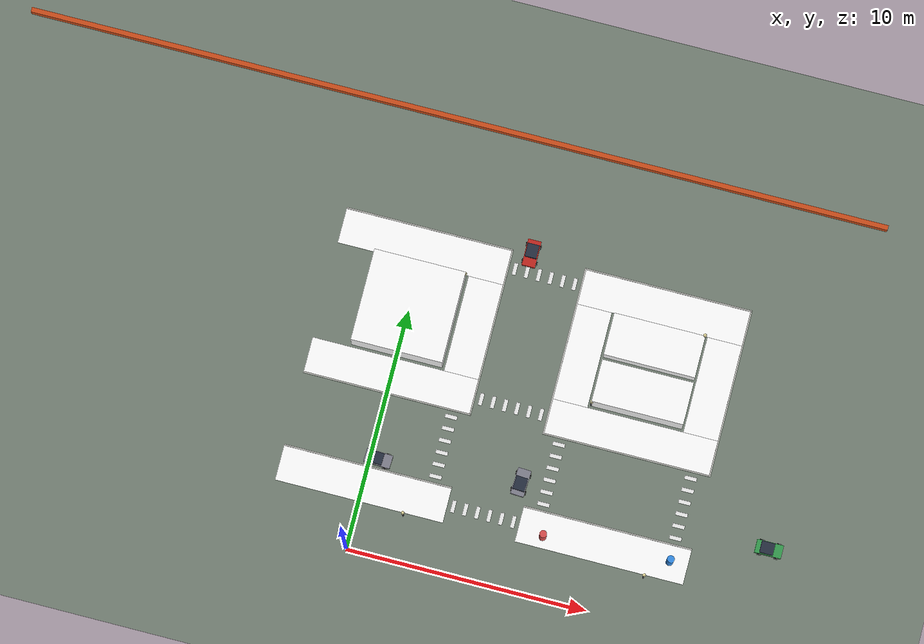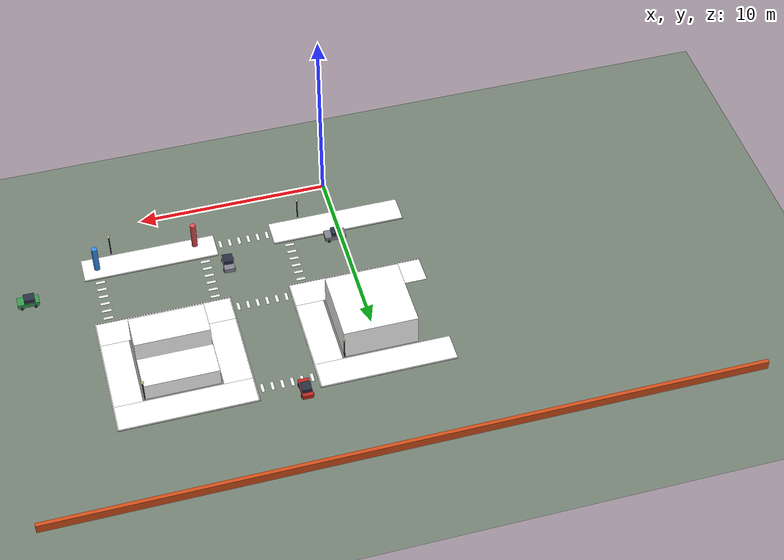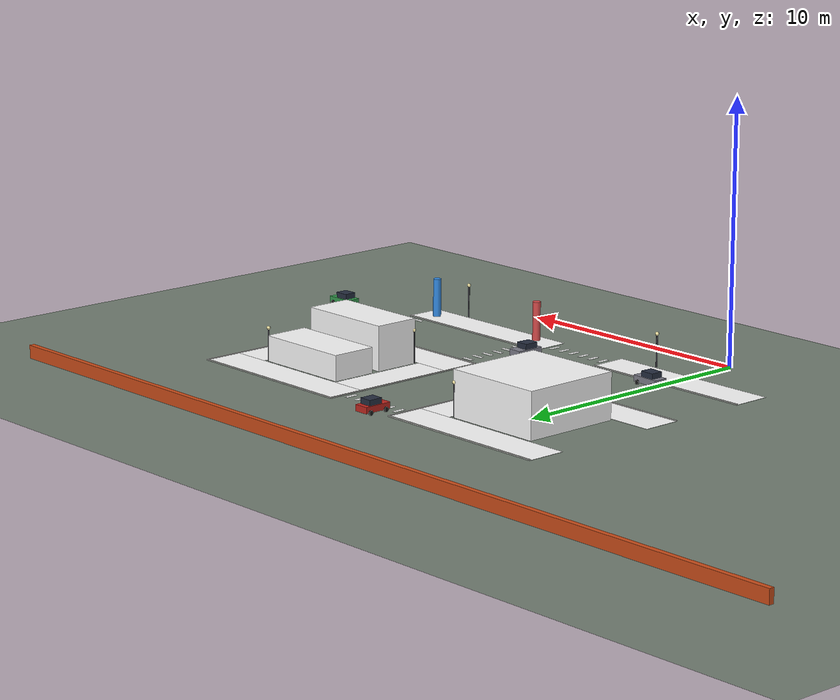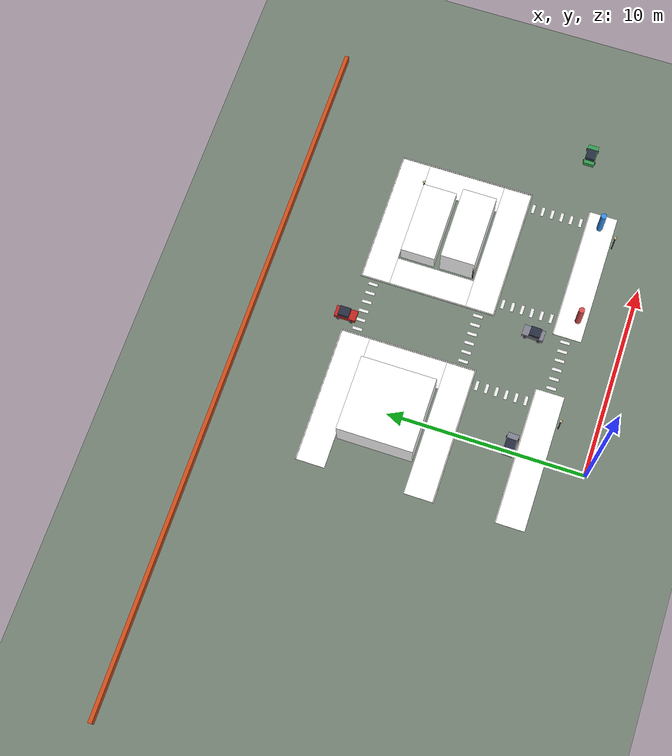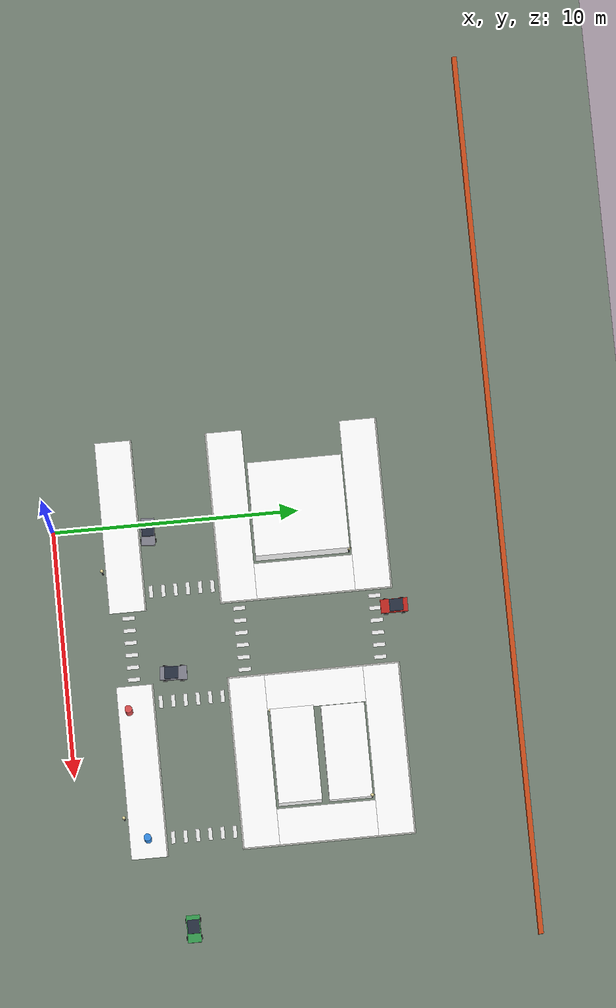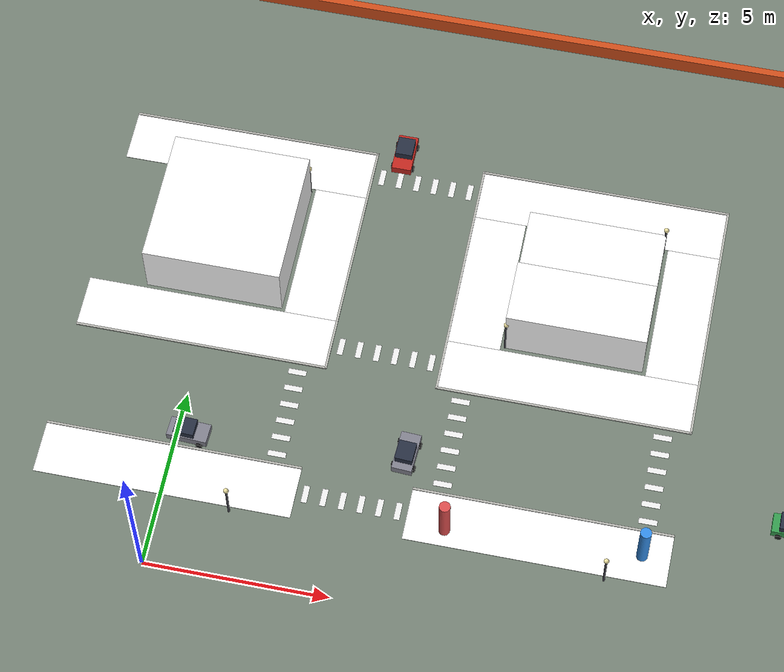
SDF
<sdf version="1.9">
 <world name="limo_city_blocks">
  <model name="ground_plane">
   <static>true</static>
   <link name="link">
    <collision name="collision">
     <geometry><plane><normal>0 0 1</normal><size>53 53</size></plane></geometry>
     <surface><friction><ode><mu>0.8</mu><mu2>0.8</mu2></ode></friction></surface>
    </collision>
    <visual name="visual">
     <geometry><plane><normal>0 0 1</normal><size>53 53</size></plane></geometry>
     <material><ambient>0.45 0.5 0.45 1</ambient><diffuse>0.45 0.5 0.45 1</diffuse></material>
    </visual>
   </link>
  </model>
  <model name="walk_n_1_1">
   <static>true</static>
   <pose>0.000 2.750 0.008 0 0 0.000</pose>
   <link name="link">
    <visual name="visual">
     <geometry><box><size>7.000 1.500 0.012</size></box></geometry>
     <material>
      <ambient>1 1 1 1</ambient>
      <diffuse>1 1 1 1</diffuse>
      <pbr>
       <metal>
        <albedo_map>model://city_textures/paving.png</albedo_map>
        <roughness>0.85</roughness>
        <metalness>0.0</metalness>
       </metal>
      </pbr>
     </material>
    </visual>
   </link>
  </model>
  <model name="walk_s_1_2">
   <static>true</static>
   <pose>0.000 7.250 0.008 0 0 0.000</pose>
   <link name="link">
    <visual name="visual">
     <geometry><box><size>7.000 1.500 0.012</size></box></geometry>
     <material>
      <ambient>1 1 1 1</ambient>
      <diffuse>1 1 1 1</diffuse>
      <pbr>
       <metal>
        <albedo_map>model://city_textures/paving.png</albedo_map>
        <roughness>0.85</roughness>
        <metalness>0.0</metalness>
       </metal>
      </pbr>
     </material>
    </visual>
   </link>
  </model>
  <model name="walk_n_1_2">
   <static>true</static>
   <pose>0.000 12.750 0.008 0 0 0.000</pose>
   <link name="link">
    <visual name="visual">
     <geometry><box><size>7.000 1.500 0.012</size></box></geometry>
     <material>
      <ambient>1 1 1 1</ambient>
      <diffuse>1 1 1 1</diffuse>
      <pbr>
       <metal>
        <albedo_map>model://city_textures/paving.png</albedo_map>
        <roughness>0.85</roughness>
        <metalness>0.0</metalness>
       </metal>
      </pbr>
     </material>
    </visual>
   </link>
  </model>
  <model name="walk_e_1_2">
   <static>true</static>
   <pose>2.750 10.000 0.008 0 0 0.000</pose>
   <link name="link">
    <visual name="visual">
     <geometry><box><size>1.500 4.000 0.012</size></box></geometry>
     <material>
      <ambient>1 1 1 1</ambient>
      <diffuse>1 1 1 1</diffuse>
      <pbr>
       <metal>
        <albedo_map>model://city_textures/paving.png</albedo_map>
        <roughness>0.85</roughness>
        <metalness>0.0</metalness>
       </metal>
      </pbr>
     </material>
    </visual>
   </link>
  </model>
  <model name="walk_n_2_1">
   <static>true</static>
   <pose>10.000 2.750 0.008 0 0 0.000</pose>
   <link name="link">
    <visual name="visual">
     <geometry><box><size>7.000 1.500 0.012</size></box></geometry>
     <material>
      <ambient>1 1 1 1</ambient>
      <diffuse>1 1 1 1</diffuse>
      <pbr>
       <metal>
        <albedo_map>model://city_textures/paving.png</albedo_map>
        <roughness>0.85</roughness>
        <metalness>0.0</metalness>
       </metal>
      </pbr>
     </material>
    </visual>
   </link>
  </model>
  <model name="walk_s_2_2">
   <static>true</static>
   <pose>10.000 7.250 0.008 0 0 0.000</pose>
   <link name="link">
    <visual name="visual">
     <geometry><box><size>7.000 1.500 0.012</size></box></geometry>
     <material>
      <ambient>1 1 1 1</ambient>
      <diffuse>1 1 1 1</diffuse>
      <pbr>
       <metal>
        <albedo_map>model://city_textures/paving.png</albedo_map>
        <roughness>0.85</roughness>
        <metalness>0.0</metalness>
       </metal>
      </pbr>
     </material>
    </visual>
   </link>
  </model>
  <model name="walk_n_2_2">
   <static>true</static>
   <pose>10.000 12.750 0.008 0 0 0.000</pose>
   <link name="link">
    <visual name="visual">
     <geometry><box><size>7.000 1.500 0.012</size></box></geometry>
     <material>
      <ambient>1 1 1 1</ambient>
      <diffuse>1 1 1 1</diffuse>
      <pbr>
       <metal>
        <albedo_map>model://city_textures/paving.png</albedo_map>
        <roughness>0.85</roughness>
        <metalness>0.0</metalness>
       </metal>
      </pbr>
     </material>
    </visual>
   </link>
  </model>
  <model name="walk_w_2_2">
   <static>true</static>
   <pose>7.250 10.000 0.008 0 0 0.000</pose>
   <link name="link">
    <visual name="visual">
     <geometry><box><size>1.500 4.000 0.012</size></box></geometry>
     <material>
      <ambient>1 1 1 1</ambient>
      <diffuse>1 1 1 1</diffuse>
      <pbr>
       <metal>
        <albedo_map>model://city_textures/paving.png</albedo_map>
        <roughness>0.85</roughness>
        <metalness>0.0</metalness>
       </metal>
      </pbr>
     </material>
    </visual>
   </link>
  </model>
  <model name="walk_e_2_2">
   <static>true</static>
   <pose>12.750 10.000 0.008 0 0 0.000</pose>
   <link name="link">
    <visual name="visual">
     <geometry><box><size>1.500 4.000 0.012</size></box></geometry>
     <material>
      <ambient>1 1 1 1</ambient>
      <diffuse>1 1 1 1</diffuse>
      <pbr>
       <metal>
        <albedo_map>model://city_textures/paving.png</albedo_map>
        <roughness>0.85</roughness>
        <metalness>0.0</metalness>
       </metal>
      </pbr>
     </material>
    </visual>
   </link>
  </model>
  <model name="curb_n_1_1">
   <static>true</static>
   <pose>0.000 3.470 0.020 0 0 0.000</pose>
   <link name="link">
    <visual name="visual">
     <geometry><box><size>7.000 0.060 0.040</size></box></geometry>
     <material><ambient>0.72 0.72 0.7 1</ambient><diffuse>0.72 0.72 0.7 1</diffuse></material>
    </visual>
   </link>
  </model>
  <model name="curb_s_1_2">
   <static>true</static>
   <pose>0.000 6.530 0.020 0 0 0.000</pose>
   <link name="link">
    <visual name="visual">
     <geometry><box><size>7.000 0.060 0.040</size></box></geometry>
     <material><ambient>0.72 0.72 0.7 1</ambient><diffuse>0.72 0.72 0.7 1</diffuse></material>
    </visual>
   </link>
  </model>
  <model name="curb_n_1_2">
   <static>true</static>
   <pose>0.000 13.470 0.020 0 0 0.000</pose>
   <link name="link">
    <visual name="visual">
     <geometry><box><size>7.000 0.060 0.040</size></box></geometry>
     <material><ambient>0.72 0.72 0.7 1</ambient><diffuse>0.72 0.72 0.7 1</diffuse></material>
    </visual>
   </link>
  </model>
  <model name="curb_e_1_2">
   <static>true</static>
   <pose>3.470 10.000 0.020 0 0 0.000</pose>
   <link name="link">
    <visual name="visual">
     <geometry><box><size>0.060 7.000 0.040</size></box></geometry>
     <material><ambient>0.72 0.72 0.7 1</ambient><diffuse>0.72 0.72 0.7 1</diffuse></material>
    </visual>
   </link>
  </model>
  <model name="curb_n_2_1">
   <static>true</static>
   <pose>10.000 3.470 0.020 0 0 0.000</pose>
   <link name="link">
    <visual name="visual">
     <geometry><box><size>7.000 0.060 0.040</size></box></geometry>
     <material><ambient>0.72 0.72 0.7 1</ambient><diffuse>0.72 0.72 0.7 1</diffuse></material>
    </visual>
   </link>
  </model>
  <model name="curb_s_2_2">
   <static>true</static>
   <pose>10.000 6.530 0.020 0 0 0.000</pose>
   <link name="link">
    <visual name="visual">
     <geometry><box><size>7.000 0.060 0.040</size></box></geometry>
     <material><ambient>0.72 0.72 0.7 1</ambient><diffuse>0.72 0.72 0.7 1</diffuse></material>
    </visual>
   </link>
  </model>
  <model name="curb_n_2_2">
   <static>true</static>
   <pose>10.000 13.470 0.020 0 0 0.000</pose>
   <link name="link">
    <visual name="visual">
     <geometry><box><size>7.000 0.060 0.040</size></box></geometry>
     <material><ambient>0.72 0.72 0.7 1</ambient><diffuse>0.72 0.72 0.7 1</diffuse></material>
    </visual>
   </link>
  </model>
  <model name="curb_w_2_2">
   <static>true</static>
   <pose>6.530 10.000 0.020 0 0 0.000</pose>
   <link name="link">
    <visual name="visual">
     <geometry><box><size>0.060 7.000 0.040</size></box></geometry>
     <material><ambient>0.72 0.72 0.7 1</ambient><diffuse>0.72 0.72 0.7 1</diffuse></material>
    </visual>
   </link>
  </model>
  <model name="curb_e_2_2">
   <static>true</static>
   <pose>13.470 10.000 0.020 0 0 0.000</pose>
   <link name="link">
    <visual name="visual">
     <geometry><box><size>0.060 7.000 0.040</size></box></geometry>
     <material><ambient>0.72 0.72 0.7 1</ambient><diffuse>0.72 0.72 0.7 1</diffuse></material>
    </visual>
   </link>
  </model>
  <model name="lamp_9">
   <static>true</static>
   <pose>1.880 1.880 0 0 0 0</pose>
   <link name="link">
    <collision name="collision">
     <pose>0 0 0.6 0 0 0</pose>
     <geometry><cylinder><radius>0.03</radius><length>1.2</length></cylinder></geometry>
    </collision>
    <visual name="pole">
     <pose>0 0 0.6 0 0 0</pose>
     <geometry><cylinder><radius>0.03</radius><length>1.2</length></cylinder></geometry>
     <material><ambient>0.2 0.2 0.22 1</ambient><diffuse>0.25 0.25 0.28 1</diffuse></material>
    </visual>
    <visual name="head">
     <pose>0 0 1.25 0 0 0</pose>
     <geometry><sphere><radius>0.07</radius></sphere></geometry>
     <material>
      <ambient>0.9 0.85 0.6 1</ambient>
      <diffuse>0.95 0.9 0.65 1</diffuse>
      <emissive>0.5 0.45 0.25 1</emissive>
     </material>
    </visual>
   </link>
  </model>
  <model name="lamp_11">
   <static>true</static>
   <pose>1.880 11.880 0 0 0 0</pose>
   <link name="link">
    <collision name="collision">
     <pose>0 0 0.6 0 0 0</pose>
     <geometry><cylinder><radius>0.03</radius><length>1.2</length></cylinder></geometry>
    </collision>
    <visual name="pole">
     <pose>0 0 0.6 0 0 0</pose>
     <geometry><cylinder><radius>0.03</radius><length>1.2</length></cylinder></geometry>
     <material><ambient>0.2 0.2 0.22 1</ambient><diffuse>0.25 0.25 0.28 1</diffuse></material>
    </visual>
    <visual name="head">
     <pose>0 0 1.25 0 0 0</pose>
     <geometry><sphere><radius>0.07</radius></sphere></geometry>
     <material>
      <ambient>0.9 0.85 0.6 1</ambient>
      <diffuse>0.95 0.9 0.65 1</diffuse>
      <emissive>0.5 0.45 0.25 1</emissive>
     </material>
    </visual>
   </link>
  </model>
  <model name="lamp_15">
   <static>true</static>
   <pose>11.880 1.880 0 0 0 0</pose>
   <link name="link">
    <collision name="collision">
     <pose>0 0 0.6 0 0 0</pose>
     <geometry><cylinder><radius>0.03</radius><length>1.2</length></cylinder></geometry>
    </collision>
    <visual name="pole">
     <pose>0 0 0.6 0 0 0</pose>
     <geometry><cylinder><radius>0.03</radius><length>1.2</length></cylinder></geometry>
     <material><ambient>0.2 0.2 0.22 1</ambient><diffuse>0.25 0.25 0.28 1</diffuse></material>
    </visual>
    <visual name="head">
     <pose>0 0 1.25 0 0 0</pose>
     <geometry><sphere><radius>0.07</radius></sphere></geometry>
     <material>
      <ambient>0.9 0.85 0.6 1</ambient>
      <diffuse>0.95 0.9 0.65 1</diffuse>
      <emissive>0.5 0.45 0.25 1</emissive>
     </material>
    </visual>
   </link>
  </model>
  <model name="lamp_16">
   <static>true</static>
   <pose>8.120 8.120 0 0 0 0</pose>
   <link name="link">
    <collision name="collision">
     <pose>0 0 0.6 0 0 0</pose>
     <geometry><cylinder><radius>0.03</radius><length>1.2</length></cylinder></geometry>
    </collision>
    <visual name="pole">
     <pose>0 0 0.6 0 0 0</pose>
     <geometry><cylinder><radius>0.03</radius><length>1.2</length></cylinder></geometry>
     <material><ambient>0.2 0.2 0.22 1</ambient><diffuse>0.25 0.25 0.28 1</diffuse></material>
    </visual>
    <visual name="head">
     <pose>0 0 1.25 0 0 0</pose>
     <geometry><sphere><radius>0.07</radius></sphere></geometry>
     <material>
      <ambient>0.9 0.85 0.6 1</ambient>
      <diffuse>0.95 0.9 0.65 1</diffuse>
      <emissive>0.5 0.45 0.25 1</emissive>
     </material>
    </visual>
   </link>
  </model>
  <model name="lamp_17">
   <static>true</static>
   <pose>11.880 11.880 0 0 0 0</pose>
   <link name="link">
    <collision name="collision">
     <pose>0 0 0.6 0 0 0</pose>
     <geometry><cylinder><radius>0.03</radius><length>1.2</length></cylinder></geometry>
    </collision>
    <visual name="pole">
     <pose>0 0 0.6 0 0 0</pose>
     <geometry><cylinder><radius>0.03</radius><length>1.2</length></cylinder></geometry>
     <material><ambient>0.2 0.2 0.22 1</ambient><diffuse>0.25 0.25 0.28 1</diffuse></material>
    </visual>
    <visual name="head">
     <pose>0 0 1.25 0 0 0</pose>
     <geometry><sphere><radius>0.07</radius></sphere></geometry>
     <material>
      <ambient>0.9 0.85 0.6 1</ambient>
      <diffuse>0.95 0.9 0.65 1</diffuse>
      <emissive>0.5 0.45 0.25 1</emissive>
     </material>
    </visual>
   </link>
  </model>
  <model name="zebra_9_0">
   <static>true</static>
   <pose>3.750 2.750 0.013 0 0 0.000</pose>
   <link name="link">
    <visual name="visual">
     <geometry><box><size>0.160 0.500 0.002</size></box></geometry>
     <material><ambient>0.92 0.92 0.92 1</ambient><diffuse>0.92 0.92 0.92 1</diffuse></material>
    </visual>
   </link>
  </model>
  <model name="zebra_9_1">
   <static>true</static>
   <pose>4.250 2.750 0.013 0 0 0.000</pose>
   <link name="link">
    <visual name="visual">
     <geometry><box><size>0.160 0.500 0.002</size></box></geometry>
     <material><ambient>0.92 0.92 0.92 1</ambient><diffuse>0.92 0.92 0.92 1</diffuse></material>
    </visual>
   </link>
  </model>
  <model name="zebra_9_2">
   <static>true</static>
   <pose>4.750 2.750 0.013 0 0 0.000</pose>
   <link name="link">
    <visual name="visual">
     <geometry><box><size>0.160 0.500 0.002</size></box></geometry>
     <material><ambient>0.92 0.92 0.92 1</ambient><diffuse>0.92 0.92 0.92 1</diffuse></material>
    </visual>
   </link>
  </model>
  <model name="zebra_9_3">
   <static>true</static>
   <pose>5.250 2.750 0.013 0 0 0.000</pose>
   <link name="link">
    <visual name="visual">
     <geometry><box><size>0.160 0.500 0.002</size></box></geometry>
     <material><ambient>0.92 0.92 0.92 1</ambient><diffuse>0.92 0.92 0.92 1</diffuse></material>
    </visual>
   </link>
  </model>
  <model name="zebra_9_4">
   <static>true</static>
   <pose>5.750 2.750 0.013 0 0 0.000</pose>
   <link name="link">
    <visual name="visual">
     <geometry><box><size>0.160 0.500 0.002</size></box></geometry>
     <material><ambient>0.92 0.92 0.92 1</ambient><diffuse>0.92 0.92 0.92 1</diffuse></material>
    </visual>
   </link>
  </model>
  <model name="zebra_9_5">
   <static>true</static>
   <pose>6.250 2.750 0.013 0 0 0.000</pose>
   <link name="link">
    <visual name="visual">
     <geometry><box><size>0.160 0.500 0.002</size></box></geometry>
     <material><ambient>0.92 0.92 0.92 1</ambient><diffuse>0.92 0.92 0.92 1</diffuse></material>
    </visual>
   </link>
  </model>
  <model name="zebra_10_0">
   <static>true</static>
   <pose>3.750 7.250 0.013 0 0 0.000</pose>
   <link name="link">
    <visual name="visual">
     <geometry><box><size>0.160 0.500 0.002</size></box></geometry>
     <material><ambient>0.92 0.92 0.92 1</ambient><diffuse>0.92 0.92 0.92 1</diffuse></material>
    </visual>
   </link>
  </model>
  <model name="zebra_10_1">
   <static>true</static>
   <pose>4.250 7.250 0.013 0 0 0.000</pose>
   <link name="link">
    <visual name="visual">
     <geometry><box><size>0.160 0.500 0.002</size></box></geometry>
     <material><ambient>0.92 0.92 0.92 1</ambient><diffuse>0.92 0.92 0.92 1</diffuse></material>
    </visual>
   </link>
  </model>
  <model name="zebra_10_2">
   <static>true</static>
   <pose>4.750 7.250 0.013 0 0 0.000</pose>
   <link name="link">
    <visual name="visual">
     <geometry><box><size>0.160 0.500 0.002</size></box></geometry>
     <material><ambient>0.92 0.92 0.92 1</ambient><diffuse>0.92 0.92 0.92 1</diffuse></material>
    </visual>
   </link>
  </model>
  <model name="zebra_10_3">
   <static>true</static>
   <pose>5.250 7.250 0.013 0 0 0.000</pose>
   <link name="link">
    <visual name="visual">
     <geometry><box><size>0.160 0.500 0.002</size></box></geometry>
     <material><ambient>0.92 0.92 0.92 1</ambient><diffuse>0.92 0.92 0.92 1</diffuse></material>
    </visual>
   </link>
  </model>
  <model name="zebra_10_4">
   <static>true</static>
   <pose>5.750 7.250 0.013 0 0 0.000</pose>
   <link name="link">
    <visual name="visual">
     <geometry><box><size>0.160 0.500 0.002</size></box></geometry>
     <material><ambient>0.92 0.92 0.92 1</ambient><diffuse>0.92 0.92 0.92 1</diffuse></material>
    </visual>
   </link>
  </model>
  <model name="zebra_10_5">
   <static>true</static>
   <pose>6.250 7.250 0.013 0 0 0.000</pose>
   <link name="link">
    <visual name="visual">
     <geometry><box><size>0.160 0.500 0.002</size></box></geometry>
     <material><ambient>0.92 0.92 0.92 1</ambient><diffuse>0.92 0.92 0.92 1</diffuse></material>
    </visual>
   </link>
  </model>
  <model name="zebra_11_0">
   <static>true</static>
   <pose>3.750 12.750 0.013 0 0 0.000</pose>
   <link name="link">
    <visual name="visual">
     <geometry><box><size>0.160 0.500 0.002</size></box></geometry>
     <material><ambient>0.92 0.92 0.92 1</ambient><diffuse>0.92 0.92 0.92 1</diffuse></material>
    </visual>
   </link>
  </model>
  <model name="zebra_11_1">
   <static>true</static>
   <pose>4.250 12.750 0.013 0 0 0.000</pose>
   <link name="link">
    <visual name="visual">
     <geometry><box><size>0.160 0.500 0.002</size></box></geometry>
     <material><ambient>0.92 0.92 0.92 1</ambient><diffuse>0.92 0.92 0.92 1</diffuse></material>
    </visual>
   </link>
  </model>
  <model name="zebra_11_2">
   <static>true</static>
   <pose>4.750 12.750 0.013 0 0 0.000</pose>
   <link name="link">
    <visual name="visual">
     <geometry><box><size>0.160 0.500 0.002</size></box></geometry>
     <material><ambient>0.92 0.92 0.92 1</ambient><diffuse>0.92 0.92 0.92 1</diffuse></material>
    </visual>
   </link>
  </model>
  <model name="zebra_11_3">
   <static>true</static>
   <pose>5.250 12.750 0.013 0 0 0.000</pose>
   <link name="link">
    <visual name="visual">
     <geometry><box><size>0.160 0.500 0.002</size></box></geometry>
     <material><ambient>0.92 0.92 0.92 1</ambient><diffuse>0.92 0.92 0.92 1</diffuse></material>
    </visual>
   </link>
  </model>
  <model name="zebra_11_4">
   <static>true</static>
   <pose>5.750 12.750 0.013 0 0 0.000</pose>
   <link name="link">
    <visual name="visual">
     <geometry><box><size>0.160 0.500 0.002</size></box></geometry>
     <material><ambient>0.92 0.92 0.92 1</ambient><diffuse>0.92 0.92 0.92 1</diffuse></material>
    </visual>
   </link>
  </model>
  <model name="zebra_11_5">
   <static>true</static>
   <pose>6.250 12.750 0.013 0 0 0.000</pose>
   <link name="link">
    <visual name="visual">
     <geometry><box><size>0.160 0.500 0.002</size></box></geometry>
     <material><ambient>0.92 0.92 0.92 1</ambient><diffuse>0.92 0.92 0.92 1</diffuse></material>
    </visual>
   </link>
  </model>
  <model name="zebra_21_0">
   <static>true</static>
   <pose>2.750 3.750 0.013 0 0 0.000</pose>
   <link name="link">
    <visual name="visual">
     <geometry><box><size>0.500 0.160 0.002</size></box></geometry>
     <material><ambient>0.92 0.92 0.92 1</ambient><diffuse>0.92 0.92 0.92 1</diffuse></material>
    </visual>
   </link>
  </model>
  <model name="zebra_21_1">
   <static>true</static>
   <pose>2.750 4.250 0.013 0 0 0.000</pose>
   <link name="link">
    <visual name="visual">
     <geometry><box><size>0.500 0.160 0.002</size></box></geometry>
     <material><ambient>0.92 0.92 0.92 1</ambient><diffuse>0.92 0.92 0.92 1</diffuse></material>
    </visual>
   </link>
  </model>
  <model name="zebra_21_2">
   <static>true</static>
   <pose>2.750 4.750 0.013 0 0 0.000</pose>
   <link name="link">
    <visual name="visual">
     <geometry><box><size>0.500 0.160 0.002</size></box></geometry>
     <material><ambient>0.92 0.92 0.92 1</ambient><diffuse>0.92 0.92 0.92 1</diffuse></material>
    </visual>
   </link>
  </model>
  <model name="zebra_21_3">
   <static>true</static>
   <pose>2.750 5.250 0.013 0 0 0.000</pose>
   <link name="link">
    <visual name="visual">
     <geometry><box><size>0.500 0.160 0.002</size></box></geometry>
     <material><ambient>0.92 0.92 0.92 1</ambient><diffuse>0.92 0.92 0.92 1</diffuse></material>
    </visual>
   </link>
  </model>
  <model name="zebra_21_4">
   <static>true</static>
   <pose>2.750 5.750 0.013 0 0 0.000</pose>
   <link name="link">
    <visual name="visual">
     <geometry><box><size>0.500 0.160 0.002</size></box></geometry>
     <material><ambient>0.92 0.92 0.92 1</ambient><diffuse>0.92 0.92 0.92 1</diffuse></material>
    </visual>
   </link>
  </model>
  <model name="zebra_21_5">
   <static>true</static>
   <pose>2.750 6.250 0.013 0 0 0.000</pose>
   <link name="link">
    <visual name="visual">
     <geometry><box><size>0.500 0.160 0.002</size></box></geometry>
     <material><ambient>0.92 0.92 0.92 1</ambient><diffuse>0.92 0.92 0.92 1</diffuse></material>
    </visual>
   </link>
  </model>
  <model name="zebra_22_0">
   <static>true</static>
   <pose>7.250 3.750 0.013 0 0 0.000</pose>
   <link name="link">
    <visual name="visual">
     <geometry><box><size>0.500 0.160 0.002</size></box></geometry>
     <material><ambient>0.92 0.92 0.92 1</ambient><diffuse>0.92 0.92 0.92 1</diffuse></material>
    </visual>
   </link>
  </model>
  <model name="zebra_22_1">
   <static>true</static>
   <pose>7.250 4.250 0.013 0 0 0.000</pose>
   <link name="link">
    <visual name="visual">
     <geometry><box><size>0.500 0.160 0.002</size></box></geometry>
     <material><ambient>0.92 0.92 0.92 1</ambient><diffuse>0.92 0.92 0.92 1</diffuse></material>
    </visual>
   </link>
  </model>
  <model name="zebra_22_2">
   <static>true</static>
   <pose>7.250 4.750 0.013 0 0 0.000</pose>
   <link name="link">
    <visual name="visual">
     <geometry><box><size>0.500 0.160 0.002</size></box></geometry>
     <material><ambient>0.92 0.92 0.92 1</ambient><diffuse>0.92 0.92 0.92 1</diffuse></material>
    </visual>
   </link>
  </model>
  <model name="zebra_22_3">
   <static>true</static>
   <pose>7.250 5.250 0.013 0 0 0.000</pose>
   <link name="link">
    <visual name="visual">
     <geometry><box><size>0.500 0.160 0.002</size></box></geometry>
     <material><ambient>0.92 0.92 0.92 1</ambient><diffuse>0.92 0.92 0.92 1</diffuse></material>
    </visual>
   </link>
  </model>
  <model name="zebra_22_4">
   <static>true</static>
   <pose>7.250 5.750 0.013 0 0 0.000</pose>
   <link name="link">
    <visual name="visual">
     <geometry><box><size>0.500 0.160 0.002</size></box></geometry>
     <material><ambient>0.92 0.92 0.92 1</ambient><diffuse>0.92 0.92 0.92 1</diffuse></material>
    </visual>
   </link>
  </model>
  <model name="zebra_22_5">
   <static>true</static>
   <pose>7.250 6.250 0.013 0 0 0.000</pose>
   <link name="link">
    <visual name="visual">
     <geometry><box><size>0.500 0.160 0.002</size></box></geometry>
     <material><ambient>0.92 0.92 0.92 1</ambient><diffuse>0.92 0.92 0.92 1</diffuse></material>
    </visual>
   </link>
  </model>
  <model name="zebra_23_0">
   <static>true</static>
   <pose>12.750 3.750 0.013 0 0 0.000</pose>
   <link name="link">
    <visual name="visual">
     <geometry><box><size>0.500 0.160 0.002</size></box></geometry>
     <material><ambient>0.92 0.92 0.92 1</ambient><diffuse>0.92 0.92 0.92 1</diffuse></material>
    </visual>
   </link>
  </model>
  <model name="zebra_23_1">
   <static>true</static>
   <pose>12.750 4.250 0.013 0 0 0.000</pose>
   <link name="link">
    <visual name="visual">
     <geometry><box><size>0.500 0.160 0.002</size></box></geometry>
     <material><ambient>0.92 0.92 0.92 1</ambient><diffuse>0.92 0.92 0.92 1</diffuse></material>
    </visual>
   </link>
  </model>
  <model name="zebra_23_2">
   <static>true</static>
   <pose>12.750 4.750 0.013 0 0 0.000</pose>
   <link name="link">
    <visual name="visual">
     <geometry><box><size>0.500 0.160 0.002</size></box></geometry>
     <material><ambient>0.92 0.92 0.92 1</ambient><diffuse>0.92 0.92 0.92 1</diffuse></material>
    </visual>
   </link>
  </model>
  <model name="zebra_23_3">
   <static>true</static>
   <pose>12.750 5.250 0.013 0 0 0.000</pose>
   <link name="link">
    <visual name="visual">
     <geometry><box><size>0.500 0.160 0.002</size></box></geometry>
     <material><ambient>0.92 0.92 0.92 1</ambient><diffuse>0.92 0.92 0.92 1</diffuse></material>
    </visual>
   </link>
  </model>
  <model name="zebra_23_4">
   <static>true</static>
   <pose>12.750 5.750 0.013 0 0 0.000</pose>
   <link name="link">
    <visual name="visual">
     <geometry><box><size>0.500 0.160 0.002</size></box></geometry>
     <material><ambient>0.92 0.92 0.92 1</ambient><diffuse>0.92 0.92 0.92 1</diffuse></material>
    </visual>
   </link>
  </model>
  <model name="zebra_23_5">
   <static>true</static>
   <pose>12.750 6.250 0.013 0 0 0.000</pose>
   <link name="link">
    <visual name="visual">
     <geometry><box><size>0.500 0.160 0.002</size></box></geometry>
     <material><ambient>0.92 0.92 0.92 1</ambient><diffuse>0.92 0.92 0.92 1</diffuse></material>
    </visual>
   </link>
  </model>
  <model name="wall_north">
   <static>true</static>
   <pose>0.000 18.100 0.250 0 0 0.000</pose>
   <link name="link">
    <collision name="collision"><geometry><box><size>36.000 0.200 0.500</size></box></geometry></collision>
    <visual name="visual">
     <geometry><box><size>36.000 0.200 0.500</size></box></geometry>
     <material><ambient>0.8 0.3 0.1 1</ambient><diffuse>0.8 0.3 0.1 1</diffuse></material>
    </visual>
   </link>
  </model>
  <model name="building_7">
   <static>true</static>
   <pose>0.000 10.000 0.862 0 0 0.000</pose>
   <link name="link">
    <collision name="collision"><geometry><box><size>3.800 3.800 1.723</size></box></geometry></collision>
    <visual name="visual">
     <geometry><box><size>3.800 3.800 1.723</size></box></geometry>
     <material>
      <ambient>1 1 1 1</ambient>
      <diffuse>1 1 1 1</diffuse>
      <pbr>
       <metal>
        <albedo_map>model://city_textures/facade_3.png</albedo_map>
        <roughness>0.85</roughness>
        <metalness>0.0</metalness>
       </metal>
      </pbr>
     </material>
    </visual>
   </link>
  </model>
  <model name="building_11">
   <static>true</static>
   <pose>10.000 8.975 0.848 0 0 0.000</pose>
   <link name="link">
    <collision name="collision"><geometry><box><size>3.800 1.750 1.696</size></box></geometry></collision>
    <visual name="visual">
     <geometry><box><size>3.800 1.750 1.696</size></box></geometry>
     <material>
      <ambient>1 1 1 1</ambient>
      <diffuse>1 1 1 1</diffuse>
      <pbr>
       <metal>
        <albedo_map>model://city_textures/facade_1.png</albedo_map>
        <roughness>0.85</roughness>
        <metalness>0.0</metalness>
       </metal>
      </pbr>
     </material>
    </visual>
   </link>
  </model>
  <model name="building_12">
   <static>true</static>
   <pose>10.000 11.025 0.482 0 0 0.000</pose>
   <link name="link">
    <collision name="collision"><geometry><box><size>3.800 1.750 0.965</size></box></geometry></collision>
    <visual name="visual">
     <geometry><box><size>3.800 1.750 0.965</size></box></geometry>
     <material>
      <ambient>1 1 1 1</ambient>
      <diffuse>1 1 1 1</diffuse>
      <pbr>
       <metal>
        <albedo_map>model://city_textures/facade_4.png</albedo_map>
        <roughness>0.85</roughness>
        <metalness>0.0</metalness>
       </metal>
      </pbr>
     </material>
    </visual>
   </link>
  </model>
  <model name="ped_1_cross">
   <pose>12.750 2.750 0 0 0 0</pose>
   <link name="body">
    <kinematic>true</kinematic>
    <collision name="collision">
     <pose>0 0 0.75 0 0 0</pose>
     <geometry><cylinder><radius>0.15</radius><length>1.5</length></cylinder></geometry>
    </collision>
    <visual name="visual">
     <pose>0 0 0.75 0 0 0</pose>
     <geometry><cylinder><radius>0.15</radius><length>1.5</length></cylinder></geometry>
     <material><ambient>0.2 0.55 0.9 1</ambient><diffuse>0.2 0.55 0.9 1</diffuse></material>
    </visual>
   </link>
   <plugin filename="gz-sim-velocity-control-system" name="gz::sim::systems::VelocityControl"/>
   <plugin filename="gz-sim-pose-publisher-system" name="gz::sim::systems::PosePublisher">
    <publish_model_pose>true</publish_model_pose>
    <publish_link_pose>false</publish_link_pose>
    <publish_collision_pose>false</publish_collision_pose>
    <publish_visual_pose>false</publish_visual_pose>
    <publish_sensor_pose>false</publish_sensor_pose>
    <use_pose_vector_msg>false</use_pose_vector_msg>
    <update_frequency>10</update_frequency>
   </plugin>
  </model>
  <model name="ped_6_loop">
   <pose>7.550 2.450 0 0 0 0</pose>
   <link name="body">
    <kinematic>true</kinematic>
    <collision name="collision">
     <pose>0 0 0.75 0 0 0</pose>
     <geometry><cylinder><radius>0.15</radius><length>1.5</length></cylinder></geometry>
    </collision>
    <visual name="visual">
     <pose>0 0 0.75 0 0 0</pose>
     <geometry><cylinder><radius>0.15</radius><length>1.5</length></cylinder></geometry>
     <material><ambient>0.85 0.3 0.3 1</ambient><diffuse>0.85 0.3 0.3 1</diffuse></material>
    </visual>
   </link>
   <plugin filename="gz-sim-velocity-control-system" name="gz::sim::systems::VelocityControl"/>
   <plugin filename="gz-sim-pose-publisher-system" name="gz::sim::systems::PosePublisher">
    <publish_model_pose>true</publish_model_pose>
    <publish_link_pose>false</publish_link_pose>
    <publish_collision_pose>false</publish_collision_pose>
    <publish_visual_pose>false</publish_visual_pose>
    <publish_sensor_pose>false</publish_sensor_pose>
    <use_pose_vector_msg>false</use_pose_vector_msg>
    <update_frequency>10</update_frequency>
   </plugin>
  </model>
  <model name="vehicle_0_car">
   <static>false</static>
   <pose>4.250 13.500 0 0 0 -1.571</pose>
   <link name="body">
    <kinematic>true</kinematic>
    <collision name="collision">
     <pose>0 0 0.2 0 0 0</pose>
     <geometry><box><size>1.10 0.55 0.40</size></box></geometry>
    </collision>
    <visual name="body_v">
     <pose>0 0 0.20 0 0 0</pose>
     <geometry><box><size>1.10 0.55 0.24</size></box></geometry>
     <material>
      <ambient>0.75 0.15 0.12 1</ambient>
      <diffuse>0.75 0.15 0.12 1</diffuse>
      <specular>0.4 0.4 0.4 1</specular>
     </material>
    </visual>
    <visual name="cabin">
     <pose>-0.08 0 0.42 0 0 0</pose>
     <geometry><box><size>0.55 0.48 0.22</size></box></geometry>
     <material>
      <ambient>0.12 0.15 0.2 1</ambient>
      <diffuse>0.15 0.18 0.25 1</diffuse>
      <specular>0.5 0.5 0.55 1</specular>
     </material>
    </visual>
    <visual name="wheel_0">
     <pose>0.35 0.29 0.09 1.5707 0 0</pose>
     <geometry><cylinder><radius>0.09</radius><length>0.06</length></cylinder></geometry>
     <material><ambient>0.08 0.08 0.08 1</ambient><diffuse>0.1 0.1 0.1 1</diffuse></material>
    </visual>
    <visual name="wheel_1">
     <pose>0.35 -0.29 0.09 1.5707 0 0</pose>
     <geometry><cylinder><radius>0.09</radius><length>0.06</length></cylinder></geometry>
     <material><ambient>0.08 0.08 0.08 1</ambient><diffuse>0.1 0.1 0.1 1</diffuse></material>
    </visual>
    <visual name="wheel_2">
     <pose>-0.35 0.29 0.09 1.5707 0 0</pose>
     <geometry><cylinder><radius>0.09</radius><length>0.06</length></cylinder></geometry>
     <material><ambient>0.08 0.08 0.08 1</ambient><diffuse>0.1 0.1 0.1 1</diffuse></material>
    </visual>
    <visual name="wheel_3">
     <pose>-0.35 -0.29 0.09 1.5707 0 0</pose>
     <geometry><cylinder><radius>0.09</radius><length>0.06</length></cylinder></geometry>
     <material><ambient>0.08 0.08 0.08 1</ambient><diffuse>0.1 0.1 0.1 1</diffuse></material>
    </visual>
   </link>
   <plugin filename="gz-sim-velocity-control-system" name="gz::sim::systems::VelocityControl"/>
   <plugin filename="gz-sim-pose-publisher-system" name="gz::sim::systems::PosePublisher">
    <publish_model_pose>true</publish_model_pose>
    <publish_link_pose>false</publish_link_pose>
    <publish_collision_pose>false</publish_collision_pose>
    <publish_visual_pose>false</publish_visual_pose>
    <publish_sensor_pose>false</publish_sensor_pose>
    <use_pose_vector_msg>false</use_pose_vector_msg>
    <update_frequency>15</update_frequency>
   </plugin>
  </model>
  <model name="vehicle_3_car">
   <static>false</static>
   <pose>16.500 4.250 0 0 0 0.000</pose>
   <link name="body">
    <kinematic>true</kinematic>
    <collision name="collision">
     <pose>0 0 0.2 0 0 0</pose>
     <geometry><box><size>1.10 0.55 0.40</size></box></geometry>
    </collision>
    <visual name="body_v">
     <pose>0 0 0.20 0 0 0</pose>
     <geometry><box><size>1.10 0.55 0.24</size></box></geometry>
     <material>
      <ambient>0.2 0.6 0.3 1</ambient>
      <diffuse>0.2 0.6 0.3 1</diffuse>
      <specular>0.4 0.4 0.4 1</specular>
     </material>
    </visual>
    <visual name="cabin">
     <pose>-0.08 0 0.42 0 0 0</pose>
     <geometry><box><size>0.55 0.48 0.22</size></box></geometry>
     <material>
      <ambient>0.12 0.15 0.2 1</ambient>
      <diffuse>0.15 0.18 0.25 1</diffuse>
      <specular>0.5 0.5 0.55 1</specular>
     </material>
    </visual>
    <visual name="wheel_0">
     <pose>0.35 0.29 0.09 1.5707 0 0</pose>
     <geometry><cylinder><radius>0.09</radius><length>0.06</length></cylinder></geometry>
     <material><ambient>0.08 0.08 0.08 1</ambient><diffuse>0.1 0.1 0.1 1</diffuse></material>
    </visual>
    <visual name="wheel_1">
     <pose>0.35 -0.29 0.09 1.5707 0 0</pose>
     <geometry><cylinder><radius>0.09</radius><length>0.06</length></cylinder></geometry>
     <material><ambient>0.08 0.08 0.08 1</ambient><diffuse>0.1 0.1 0.1 1</diffuse></material>
    </visual>
    <visual name="wheel_2">
     <pose>-0.35 0.29 0.09 1.5707 0 0</pose>
     <geometry><cylinder><radius>0.09</radius><length>0.06</length></cylinder></geometry>
     <material><ambient>0.08 0.08 0.08 1</ambient><diffuse>0.1 0.1 0.1 1</diffuse></material>
    </visual>
    <visual name="wheel_3">
     <pose>-0.35 -0.29 0.09 1.5707 0 0</pose>
     <geometry><cylinder><radius>0.09</radius><length>0.06</length></cylinder></geometry>
     <material><ambient>0.08 0.08 0.08 1</ambient><diffuse>0.1 0.1 0.1 1</diffuse></material>
    </visual>
   </link>
   <plugin filename="gz-sim-velocity-control-system" name="gz::sim::systems::VelocityControl"/>
   <plugin filename="gz-sim-pose-publisher-system" name="gz::sim::systems::PosePublisher">
    <publish_model_pose>true</publish_model_pose>
    <publish_link_pose>false</publish_link_pose>
    <publish_collision_pose>false</publish_collision_pose>
    <publish_visual_pose>false</publish_visual_pose>
    <publish_sensor_pose>false</publish_sensor_pose>
    <use_pose_vector_msg>false</use_pose_vector_msg>
    <update_frequency>15</update_frequency>
   </plugin>
  </model>
  <model name="parked_car_0">
   <static>true</static>
   <pose>6.150 4.362 0 0 0 1.517</pose>
   <link name="body">
    <collision name="collision">
     <pose>0 0 0.2 0 0 0</pose>
     <geometry><box><size>1.10 0.55 0.40</size></box></geometry>
    </collision>
    <visual name="body_v">
     <pose>0 0 0.20 0 0 0</pose>
     <geometry><box><size>1.10 0.55 0.24</size></box></geometry>
     <material>
      <ambient>0.5 0.5 0.55 1</ambient>
      <diffuse>0.5 0.5 0.55 1</diffuse>
      <specular>0.4 0.4 0.4 1</specular>
     </material>
    </visual>
    <visual name="cabin">
     <pose>-0.08 0 0.42 0 0 0</pose>
     <geometry><box><size>0.55 0.48 0.22</size></box></geometry>
     <material>
      <ambient>0.12 0.15 0.2 1</ambient>
      <diffuse>0.15 0.18 0.25 1</diffuse>
      <specular>0.5 0.5 0.55 1</specular>
     </material>
    </visual>
    <visual name="wheel_0">
     <pose>0.35 0.29 0.09 1.5707 0 0</pose>
     <geometry><cylinder><radius>0.09</radius><length>0.06</length></cylinder></geometry>
     <material><ambient>0.08 0.08 0.08 1</ambient><diffuse>0.1 0.1 0.1 1</diffuse></material>
    </visual>
    <visual name="wheel_1">
     <pose>0.35 -0.29 0.09 1.5707 0 0</pose>
     <geometry><cylinder><radius>0.09</radius><length>0.06</length></cylinder></geometry>
     <material><ambient>0.08 0.08 0.08 1</ambient><diffuse>0.1 0.1 0.1 1</diffuse></material>
    </visual>
    <visual name="wheel_2">
     <pose>-0.35 0.29 0.09 1.5707 0 0</pose>
     <geometry><cylinder><radius>0.09</radius><length>0.06</length></cylinder></geometry>
     <material><ambient>0.08 0.08 0.08 1</ambient><diffuse>0.1 0.1 0.1 1</diffuse></material>
    </visual>
    <visual name="wheel_3">
     <pose>-0.35 -0.29 0.09 1.5707 0 0</pose>
     <geometry><cylinder><radius>0.09</radius><length>0.06</length></cylinder></geometry>
     <material><ambient>0.08 0.08 0.08 1</ambient><diffuse>0.1 0.1 0.1 1</diffuse></material>
    </visual>
   </link>
  </model>
  <model name="parked_car_3">
   <static>true</static>
   <pose>0.334 3.850 0 0 0 -0.044</pose>
   <link name="body">
    <collision name="collision">
     <pose>0 0 0.2 0 0 0</pose>
     <geometry><box><size>1.10 0.55 0.40</size></box></geometry>
    </collision>
    <visual name="body_v">
     <pose>0 0 0.20 0 0 0</pose>
     <geometry><box><size>1.10 0.55 0.24</size></box></geometry>
     <material>
      <ambient>0.5 0.5 0.55 1</ambient>
      <diffuse>0.5 0.5 0.55 1</diffuse>
      <specular>0.4 0.4 0.4 1</specular>
     </material>
    </visual>
    <visual name="cabin">
     <pose>-0.08 0 0.42 0 0 0</pose>
     <geometry><box><size>0.55 0.48 0.22</size></box></geometry>
     <material>
      <ambient>0.12 0.15 0.2 1</ambient>
      <diffuse>0.15 0.18 0.25 1</diffuse>
      <specular>0.5 0.5 0.55 1</specular>
     </material>
    </visual>
    <visual name="wheel_0">
     <pose>0.35 0.29 0.09 1.5707 0 0</pose>
     <geometry><cylinder><radius>0.09</radius><length>0.06</length></cylinder></geometry>
     <material><ambient>0.08 0.08 0.08 1</ambient><diffuse>0.1 0.1 0.1 1</diffuse></material>
    </visual>
    <visual name="wheel_1">
     <pose>0.35 -0.29 0.09 1.5707 0 0</pose>
     <geometry><cylinder><radius>0.09</radius><length>0.06</length></cylinder></geometry>
     <material><ambient>0.08 0.08 0.08 1</ambient><diffuse>0.1 0.1 0.1 1</diffuse></material>
    </visual>
    <visual name="wheel_2">
     <pose>-0.35 0.29 0.09 1.5707 0 0</pose>
     <geometry><cylinder><radius>0.09</radius><length>0.06</length></cylinder></geometry>
     <material><ambient>0.08 0.08 0.08 1</ambient><diffuse>0.1 0.1 0.1 1</diffuse></material>
    </visual>
    <visual name="wheel_3">
     <pose>-0.35 -0.29 0.09 1.5707 0 0</pose>
     <geometry><cylinder><radius>0.09</radius><length>0.06</length></cylinder></geometry>
     <material><ambient>0.08 0.08 0.08 1</ambient><diffuse>0.1 0.1 0.1 1</diffuse></material>
    </visual>
   </link>
  </model>
 </world>
</sdf>
